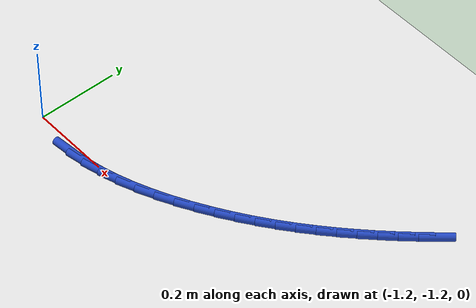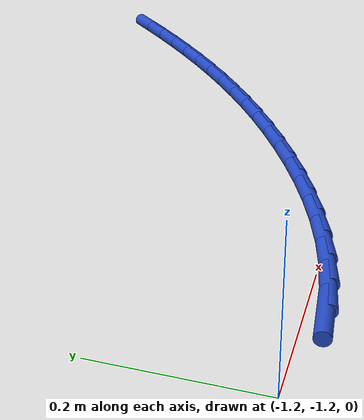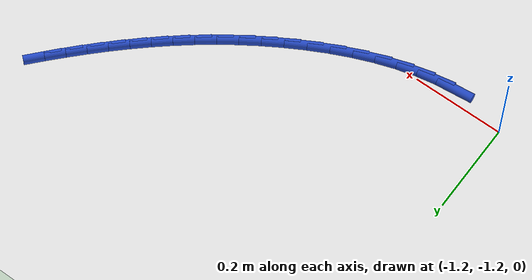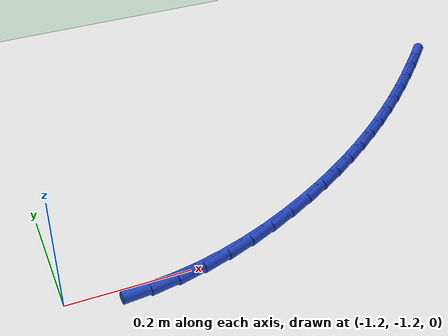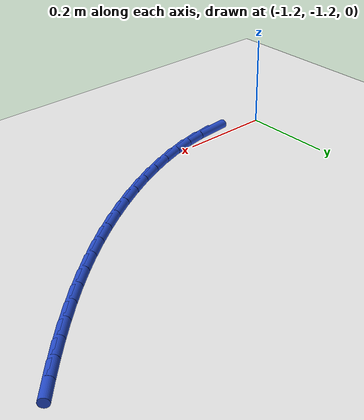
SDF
<sdf version="1.6">
 <world name="default">
  <model name="ground_plane">
   <static>1</static>
   <link name="link">
    <collision name="collision">
     <geometry><plane><normal>0 0 1</normal><size>100 100</size></plane></geometry>
     <surface><friction><ode><mu>100</mu><mu2>50</mu2></ode></friction></surface>
    </collision>
    <visual name="visual">
     <cast_shadows>0</cast_shadows>
     <geometry><plane><normal>0 0 1</normal><size>100 100</size></plane></geometry>
     <material>
      <script><uri>file://media/materials/scripts/gazebo.material</uri><name>Gazebo/WhiteGlow</name></script>
     </material>
    </visual>
   </link>
  </model>
  <model name="line">
   <link name="link_121">
    <pose>-1.0776621990525936 -1.2229554875767485 0.01 0 1.57 0.09977257739117983</pose>
    <collision name="collision">
     <geometry><cylinder><radius>0.01</radius><length>0.08</length></cylinder></geometry>
    </collision>
    <visual name="visual">
     <material>
      <script><name>Gazebo/Blue</name><uri>file://media/materials/scripts/gazebo.material</uri></script>
     </material>
     <geometry><cylinder><radius>0.01</radius><length>0.08</length></cylinder></geometry>
    </visual>
   </link>
   <link name="link_122">
    <pose>-1.0336804279633067 -1.218552693910651 0.01 0 1.57 0.1880359690043966</pose>
    <collision name="collision">
     <geometry><cylinder><radius>0.01</radius><length>0.08</length></cylinder></geometry>
    </collision>
    <visual name="visual">
     <material>
      <script><name>Gazebo/Blue</name><uri>file://media/materials/scripts/gazebo.material</uri></script>
     </material>
     <geometry><cylinder><radius>0.01</radius><length>0.08</length></cylinder></geometry>
    </visual>
   </link>
   <link name="link_123">
    <pose>-0.9893203693466616 -1.2101116876445621 0.01 0 1.57 0.26424341720452116</pose>
    <collision name="collision">
     <geometry><cylinder><radius>0.01</radius><length>0.08</length></cylinder></geometry>
    </collision>
    <visual name="visual">
     <material>
      <script><name>Gazebo/Blue</name><uri>file://media/materials/scripts/gazebo.material</uri></script>
     </material>
     <geometry><cylinder><radius>0.01</radius><length>0.08</length></cylinder></geometry>
    </visual>
   </link>
   <link name="link_124">
    <pose>-0.944867529749953 -1.1980840642958979 0.01 0 1.57 0.33004964682443305</pose>
    <collision name="collision">
     <geometry><cylinder><radius>0.01</radius><length>0.08</length></cylinder></geometry>
    </collision>
    <visual name="visual">
     <material>
      <script><name>Gazebo/Blue</name><uri>file://media/materials/scripts/gazebo.material</uri></script>
     </material>
     <geometry><cylinder><radius>0.01</radius><length>0.08</length></cylinder></geometry>
    </visual>
   </link>
   <link name="link_125">
    <pose>-0.9006074157204762 -1.1829214193820738 0.01 0 1.57 0.3870521627334294</pose>
    <collision name="collision">
     <geometry><cylinder><radius>0.01</radius><length>0.08</length></cylinder></geometry>
    </collision>
    <visual name="visual">
     <material>
      <script><name>Gazebo/Blue</name><uri>file://media/materials/scripts/gazebo.material</uri></script>
     </material>
     <geometry><cylinder><radius>0.01</radius><length>0.08</length></cylinder></geometry>
    </visual>
   </link>
   <link name="link_126">
    <pose>-0.8568255338055241 -1.1650753484205043 0.01 0 1.57 0.4366799960111007</pose>
    <collision name="collision">
     <geometry><cylinder><radius>0.01</radius><length>0.08</length></cylinder></geometry>
    </collision>
    <visual name="visual">
     <material>
      <script><name>Gazebo/Blue</name><uri>file://media/materials/scripts/gazebo.material</uri></script>
     </material>
     <geometry><cylinder><radius>0.01</radius><length>0.08</length></cylinder></geometry>
    </visual>
   </link>
   <link name="link_127">
    <pose>-0.8138073905523934 -1.144997446928606 0.01 0 1.57 0.48016257378111815</pose>
    <collision name="collision">
     <geometry><cylinder><radius>0.01</radius><length>0.08</length></cylinder></geometry>
    </collision>
    <visual name="visual">
     <material>
      <script><name>Gazebo/Blue</name><uri>file://media/materials/scripts/gazebo.material</uri></script>
     </material>
     <geometry><cylinder><radius>0.01</radius><length>0.08</length></cylinder></geometry>
    </visual>
   </link>
   <link name="link_128">
    <pose>-0.7718384925083783 -1.1231393104237943 0.01 0 1.57 0.518591086272047</pose>
    <collision name="collision">
     <geometry><cylinder><radius>0.01</radius><length>0.08</length></cylinder></geometry>
    </collision>
    <visual name="visual">
     <material>
      <script><name>Gazebo/Blue</name><uri>file://media/materials/scripts/gazebo.material</uri></script>
     </material>
     <geometry><cylinder><radius>0.01</radius><length>0.08</length></cylinder></geometry>
    </visual>
   </link>
   <link name="link_129">
    <pose>-0.7311988386197044 -1.0999465629916219 0.01 0 1.57 0.5542611833679266</pose>
    <collision name="collision">
     <geometry><cylinder><radius>0.01</radius><length>0.08</length></cylinder></geometry>
    </collision>
    <visual name="visual">
     <material>
      <script><name>Gazebo/Blue</name><uri>file://media/materials/scripts/gazebo.material</uri></script>
     </material>
     <geometry><cylinder><radius>0.01</radius><length>0.08</length></cylinder></geometry>
    </visual>
   </link>
   <link name="link_130">
    <pose>-0.6920019556391764 -1.0756843368215299 0.01 0 1.57 0.5889732288363025</pose>
    <collision name="collision">
     <geometry><cylinder><radius>0.01</radius><length>0.08</length></cylinder></geometry>
    </collision>
    <visual name="visual">
     <material>
      <script><name>Gazebo/Blue</name><uri>file://media/materials/scripts/gazebo.material</uri></script>
     </material>
     <geometry><cylinder><radius>0.01</radius><length>0.08</length></cylinder></geometry>
    </visual>
   </link>
   <link name="link_131">
    <pose>-0.6541692322667357 -1.0504094448589818 0.01 0 1.57 0.6225923899575599</pose>
    <collision name="collision">
     <geometry><cylinder><radius>0.01</radius><length>0.08</length></cylinder></geometry>
    </collision>
    <visual name="visual">
     <material>
      <script><name>Gazebo/Blue</name><uri>file://media/materials/scripts/gazebo.material</uri></script>
     </material>
     <geometry><cylinder><radius>0.01</radius><length>0.08</length></cylinder></geometry>
    </visual>
   </link>
   <link name="link_132">
    <pose>-0.6176113833236216 -1.0241671272542119 0.01 0 1.57 0.6548971723880448</pose>
    <collision name="collision">
     <geometry><cylinder><radius>0.01</radius><length>0.08</length></cylinder></geometry>
    </collision>
    <visual name="visual">
     <material>
      <script><name>Gazebo/Blue</name><uri>file://media/materials/scripts/gazebo.material</uri></script>
     </material>
     <geometry><cylinder><radius>0.01</radius><length>0.08</length></cylinder></geometry>
    </visual>
   </link>
   <link name="link_133">
    <pose>-0.5822391236310724 -0.9970026241574534 0.01 0 1.57 0.6856855525534014</pose>
    <collision name="collision">
     <geometry><cylinder><radius>0.01</radius><length>0.08</length></cylinder></geometry>
    </collision>
    <visual name="visual">
     <material>
      <script><name>Gazebo/Blue</name><uri>file://media/materials/scripts/gazebo.material</uri></script>
     </material>
     <geometry><cylinder><radius>0.01</radius><length>0.08</length></cylinder></geometry>
    </visual>
   </link>
   <link name="link_134">
    <pose>-0.5479631680103273 -0.968961175718941 0.01 0 1.57 0.714778183944805</pose>
    <collision name="collision">
     <geometry><cylinder><radius>0.01</radius><length>0.08</length></cylinder></geometry>
    </collision>
    <visual name="visual">
     <material>
      <script><name>Gazebo/Blue</name><uri>file://media/materials/scripts/gazebo.material</uri></script>
     </material>
     <geometry><cylinder><radius>0.01</radius><length>0.08</length></cylinder></geometry>
    </visual>
   </link>
   <link name="link_135">
    <pose>-0.5146942312826249 -0.9400880220889081 0.01 0 1.57 0.7420203164060835</pose>
    <collision name="collision">
     <geometry><cylinder><radius>0.01</radius><length>0.08</length></cylinder></geometry>
    </collision>
    <visual name="visual">
     <material>
      <script><name>Gazebo/Blue</name><uri>file://media/materials/scripts/gazebo.material</uri></script>
     </material>
     <geometry><cylinder><radius>0.01</radius><length>0.08</length></cylinder></geometry>
    </visual>
   </link>
   <link name="link_136">
    <pose>-0.48234302826920317 -0.9104284034175878 0.01 0 1.57 0.7672824818229209</pose>
    <collision name="collision">
     <geometry><cylinder><radius>0.01</radius><length>0.08</length></cylinder></geometry>
    </collision>
    <visual name="visual">
     <material>
      <script><name>Gazebo/Blue</name><uri>file://media/materials/scripts/gazebo.material</uri></script>
     </material>
     <geometry><cylinder><radius>0.01</radius><length>0.08</length></cylinder></geometry>
    </visual>
   </link>
   <link name="link_137">
    <pose>-0.45082027379130224 -0.8800275598552152 0.01 0 1.57 0.7904600959050715</pose>
    <collision name="collision">
     <geometry><cylinder><radius>0.01</radius><length>0.08</length></cylinder></geometry>
    </collision>
    <visual name="visual">
     <material>
      <script><name>Gazebo/Blue</name><uri>file://media/materials/scripts/gazebo.material</uri></script>
     </material>
     <geometry><cylinder><radius>0.01</radius><length>0.08</length></cylinder></geometry>
    </visual>
   </link>
   <link name="link_138">
    <pose>-0.42003668267016026 -0.8489307315520237 0.01 0 1.57 0.8114721885586099</pose>
    <collision name="collision">
     <geometry><cylinder><radius>0.01</radius><length>0.08</length></cylinder></geometry>
    </collision>
    <visual name="visual">
     <material>
      <script><name>Gazebo/Blue</name><uri>file://media/materials/scripts/gazebo.material</uri></script>
     </material>
     <geometry><cylinder><radius>0.01</radius><length>0.08</length></cylinder></geometry>
    </visual>
   </link>
   <link name="link_139">
    <pose>-0.3899029697270161 -0.8171831586582471 0.01 0 1.57 0.8302595037840289</pose>
    <collision name="collision">
     <geometry><cylinder><radius>0.01</radius><length>0.08</length></cylinder></geometry>
    </collision>
    <visual name="visual">
     <material>
      <script><name>Gazebo/Blue</name><uri>file://media/materials/scripts/gazebo.material</uri></script>
     </material>
     <geometry><cylinder><radius>0.01</radius><length>0.08</length></cylinder></geometry>
    </visual>
   </link>
   <link name="link_140">
    <pose>-0.3603298497831085 -0.7848300813241191 0.01 0 1.57 0.8467822088347531</pose>
    <collision name="collision">
     <geometry><cylinder><radius>0.01</radius><length>0.08</length></cylinder></geometry>
    </collision>
    <visual name="visual">
     <material>
      <script><name>Gazebo/Blue</name><uri>file://media/materials/scripts/gazebo.material</uri></script>
     </material>
     <geometry><cylinder><radius>0.01</radius><length>0.08</length></cylinder></geometry>
    </visual>
   </link>
  </model>
 </world>
</sdf>
